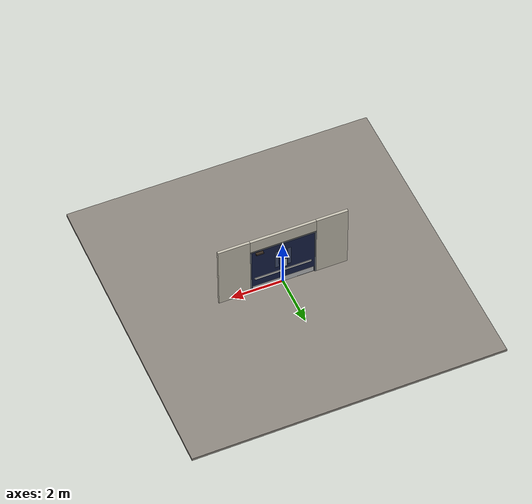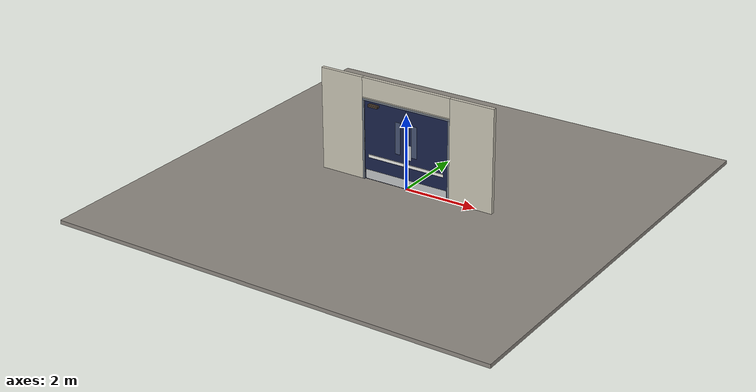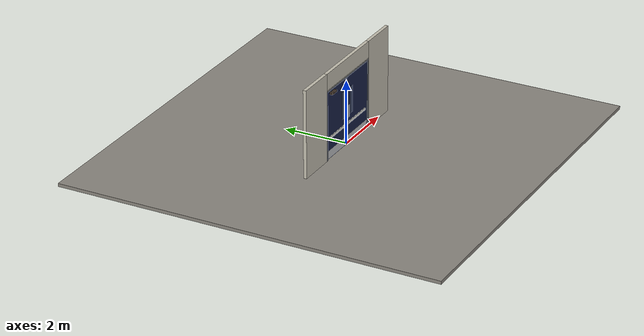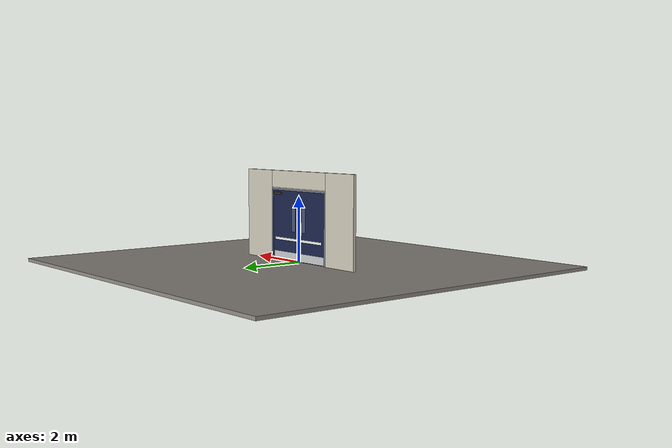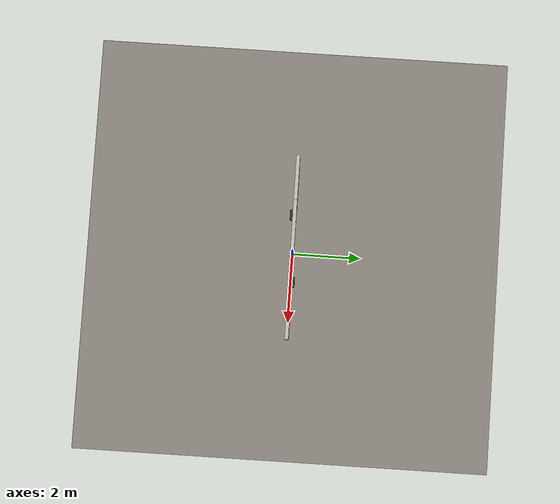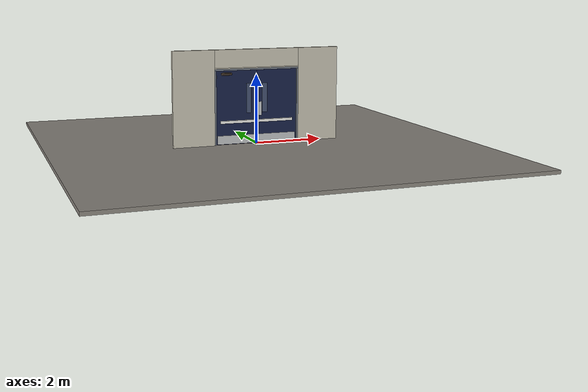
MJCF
<?xml version="1.0" ?>
<mujoco model="db0047_swing_double_full">
  <compiler angle="radian" meshdir="../../hardware" texturedir="../../textures" autolimits="true" inertiafromgeom="false"/>
  <option timestep="0.002" integrator="implicitfast" cone="elliptic" impratio="10" noslip_iterations="3">
    <flag multiccd="enable"/>
  </option>
  <size memory="16M"/>
  <default>
    <geom condim="4" solref="0.005 1" solimp="0.95 0.99 0.001"/>
    <joint solreflimit="0.005 1" solimplimit="0.95 0.99 0.001"/>
    <tendon solreflimit="0.005 1"/>
    <equality solref="0.002 1"/>
  </default>
  <visual>
    <headlight ambient="0.4 0.4 0.4" diffuse="0.7 0.7 0.7" specular="0.2 0.2 0.2"/>
    <quality shadowsize="4096"/>
    <map znear="0.01" zfar="60"/>
  </visual>
  <asset>
    <mesh name="closer_body_fdc4667657" file="closer_body_fdc4667657.obj"/>
    <mesh name="hinge_1cb808d647" file="hinge_1cb808d647.obj"/>
    <mesh name="hinge_jamb_7842e12854" file="hinge_jamb_7842e12854.obj"/>
    <material name="mat_floor" rgba="0.55 0.53 0.5 1" specular="0.2" shininess="0.15" reflectance="0"/>
    <material name="mat_wall" rgba="0.78 0.76 0.7 1" specular="0.2" shininess="0.1" reflectance="0"/>
    <material name="mat_leaf_a" rgba="0.09 0.13 0.28 1" specular="0.2" shininess="0.51" reflectance="0"/>
    <material name="mat_glass" rgba="0.85 0.92 0.95 0.25" specular="0.2" shininess="0.95" reflectance="0.1"/>
    <material name="mat_hinge" rgba="0.65 0.66 0.68 1" specular="0.74" shininess="0.5" reflectance="0.36"/>
    <material name="mat_op_stainless" rgba="0.75 0.76 0.77 1" specular="0.8" shininess="0.65" reflectance="0.4"/>
    <material name="mat_closer" rgba="0.22 0.17 0.13 1" specular="0.8" shininess="0.6" reflectance="0.4"/>
    <material name="mat_kick" rgba="0.75 0.76 0.77 1" specular="0.8" shininess="0.65" reflectance="0.4"/>
    <material name="mat_bumper" rgba="0.92 0.92 0.9 1" specular="0.2" shininess="0.6" reflectance="0"/>
    <material name="mat_leaf_b" rgba="0.09 0.13 0.28 1" specular="0.2" shininess="0.51" reflectance="0"/>
    <material name="mat_frame" rgba="0.45 0.48 0.52 1" specular="0.32" shininess="0.6" reflectance="0.08"/>
    <texture name="skybox" type="skybox" builtin="gradient" rgb1="0.6 0.7 0.85" rgb2="0.9 0.92 0.95" width="256" height="256"/>
  </asset>
  <worldbody>
    <light name="sun" pos="1.5 -2.5 4" dir="-0.3 0.5 -0.8" directional="true" diffuse="0.8 0.8 0.8" specular="0.3 0.3 0.3" castshadow="true"/>
    <light name="fill" pos="-1.5 2.5 3" dir="0.3 -0.5 -0.7" directional="true" diffuse="0.35 0.35 0.4" castshadow="false"/>
    <camera name="robot_view" pos="0 -2.919063 1.890837" xyaxes="1 0 0 0 0.26963 0.962964" fovy="52"/>
    <camera name="far_view" pos="0 2.919063 1.890837" xyaxes="-1 0 0 0 -0.26963 0.962964" fovy="52"/>
    <camera name="iso" pos="-2.218488 -2.452013 2.357888" xyaxes="0.741536 -0.670913 0 0.242917 0.268487 0.932151" fovy="46"/>
    <camera name="detail_handle" pos="0.2845 -0.8 1.296" xyaxes="0.97561 0.219512 0 -0.070934 0.315262 0.94635" fovy="38"/>
    <geom name="floor" type="box" size="6 6 0.05" pos="0 0 -0.05" material="mat_floor" group="0" contype="1" conaffinity="1" friction="0.8 0.005 0.0001" density="2400"/>
    <geom name="wall_left" type="box" size="0.61325 0.05 1.3735" pos="-1.88675 0 1.3735" material="mat_wall" group="0" contype="1" conaffinity="1" friction="0.6 0.005 0.0001" density="800"/>
    <geom name="wall_right" type="box" size="0.61325 0.05 1.3735" pos="1.88675 0 1.3735" material="mat_wall" group="0" contype="1" conaffinity="1" friction="0.6 0.005 0.0001" density="800"/>
    <geom name="wall_header" type="box" size="1.2735 0.05 0.26" pos="0 0 2.487" material="mat_wall" group="0" contype="1" conaffinity="1" friction="0.6 0.005 0.0001" density="800"/>
    <geom name="hinge_0_jamb" type="mesh" mesh="hinge_jamb_7842e12854" pos="-1.2205 -0.029 0.259" material="mat_hinge" group="1" contype="0" conaffinity="0" density="7850"/>
    <geom name="hinge_1_jamb" type="mesh" mesh="hinge_jamb_7842e12854" pos="-1.2205 -0.029 1.076" material="mat_hinge" group="1" contype="0" conaffinity="0" density="7850"/>
    <geom name="hinge_2_jamb" type="mesh" mesh="hinge_jamb_7842e12854" pos="-1.2205 -0.029 1.963" material="mat_hinge" group="1" contype="0" conaffinity="0" density="7850"/>
    <geom name="hinge_0_jamb_2" type="mesh" mesh="hinge_jamb_7842e12854" pos="1.2205 0.029 0.259" quat="0 0 0 1" material="mat_hinge" group="1" contype="0" conaffinity="0" density="7850"/>
    <geom name="hinge_1_jamb_2" type="mesh" mesh="hinge_jamb_7842e12854" pos="1.2205 0.029 1.076" quat="0 0 0 1" material="mat_hinge" group="1" contype="0" conaffinity="0" density="7850"/>
    <geom name="hinge_2_jamb_2" type="mesh" mesh="hinge_jamb_7842e12854" pos="1.2205 0.029 1.963" quat="0 0 0 1" material="mat_hinge" group="1" contype="0" conaffinity="0" density="7850"/>
    <geom name="jamb_l" type="box" size="0.025 0.05 1.0735" pos="-1.2485 0 1.0735" material="mat_frame" group="0" contype="1" conaffinity="1" friction="0.6 0.005 0.0001" density="300"/>
    <geom name="jamb_r" type="box" size="0.025 0.05 1.0735" pos="1.2485 0 1.0735" material="mat_frame" group="0" contype="1" conaffinity="1" friction="0.6 0.005 0.0001" density="300"/>
    <geom name="jamb_head" type="box" size="1.2735 0.05 0.025" pos="0 0 2.172" material="mat_frame" group="0" contype="1" conaffinity="1" friction="0.6 0.005 0.0001" density="300"/>
    <geom name="head_stud" type="box" size="1.2735 0.05 0.015" pos="0 0 2.212" material="mat_wall" group="0" contype="1" conaffinity="1" friction="0.6 0.005 0.0001" density="500"/>
    <site name="approach_point" pos="0 -1.5 0" quat="1 0 0 0" size="0.05" rgba="0.2 0.9 0.2 0.5" group="4"/>
    <site name="goal_point" pos="0 1.5 0" quat="1 0 0 0" size="0.05" rgba="0.2 0.9 0.2 0.5" group="4"/>
    <site name="door_plane_center" pos="0 0 1.0735" quat="1 0 0 0" size="0.02" rgba="0.2 0.9 0.2 0.5" group="4"/>
    <site name="approach_point_2" pos="0 -1.5 0" quat="1 0 0 0" size="0.05" rgba="0.2 0.9 0.2 0.5" group="4"/>
    <site name="goal_point_2" pos="0 1.5 0" quat="1 0 0 0" size="0.05" rgba="0.2 0.9 0.2 0.5" group="4"/>
    <site name="door_plane_center_2" pos="0 0 1.0735" quat="1 0 0 0" size="0.02" rgba="0.2 0.9 0.2 0.5" group="4"/>
    <site name="approach_point_3" pos="0 -1.5 0" quat="1 0 0 0" size="0.05" rgba="0.2 0.9 0.2 0.5" group="4"/>
    <site name="goal_point_3" pos="0 1.5 0" quat="1 0 0 0" size="0.05" rgba="0.2 0.9 0.2 0.5" group="4"/>
    <site name="door_plane_center_3" pos="0 0 1.0735" quat="1 0 0 0" size="0.02" rgba="0.2 0.9 0.2 0.5" group="4"/>
    <body name="leaf_a" pos="-1.2235 0 0">
      <inertial pos="0.570844 -0.009706 1.129429" mass="87.762029" quat="0.525965 0.526875 0.480684 -0.463364" diaginertia="10.173780127 42.483946341 52.532470281"/>
      <joint name="leaf_a_hinge" type="hinge" axis="0 0 -1" pos="0.003 -0.029 0" limited="true" range="0 1.570796" damping="12.850995" frictionloss="3.176884" stiffness="19.0031" springref="-2.141756" armature="0.02"/>
      <geom name="leaf_a_slab" type="box" size="0.6095 0.022 1.067" pos="0.6125 0 1.076" material="mat_leaf_a" group="0" contype="1" conaffinity="1" friction="0.35 0.005 0.0001" density="1"/>
      <geom name="leaf_a_glass_0" type="box" size="0.075 0.0228 0.4268" pos="0.98291 0 1.33208" material="mat_glass" group="1" contype="0" conaffinity="0" density="1"/>
      <geom name="hinge_0" type="mesh" mesh="hinge_1cb808d647" pos="0.003 -0.029 0.259" material="mat_hinge" group="1" contype="0" conaffinity="0" density="7850"/>
      <geom name="hinge_1" type="mesh" mesh="hinge_1cb808d647" pos="0.003 -0.029 1.076" material="mat_hinge" group="1" contype="0" conaffinity="0" density="7850"/>
      <geom name="hinge_2" type="mesh" mesh="hinge_1cb808d647" pos="0.003 -0.029 1.963" material="mat_hinge" group="1" contype="0" conaffinity="0" density="7850"/>
      <geom name="leaf_a_push_plate_p" type="box" size="0.05 0.0008 0.2" pos="1.117 0.0228 1.016" material="mat_op_stainless" group="1" contype="0" conaffinity="0" density="7900"/>
      <geom name="closer_body" type="mesh" mesh="closer_body_fdc4667657" pos="0.3 -0.022 2.054" quat="0.707107 0.707107 0 0" material="mat_closer" group="1" contype="0" conaffinity="0" density="2000"/>
      <geom name="closer_body_col" type="box" size="0.145 0.05 0.035" pos="0.3 -0.072 2.054" material="mat_closer" group="3" contype="1" conaffinity="1" rgba="0.8 0.3 0.3 0.25" friction="0.6 0.005 0.0001" density="2000"/>
      <geom name="kick_plate_n" type="box" size="0.5795 0.0008 0.125" pos="0.6125 -0.0228 0.144" material="mat_kick" group="2" contype="0" conaffinity="0" density="7900"/>
      <geom name="kick_plate_p" type="box" size="0.5795 0.0008 0.125" pos="0.6125 0.0228 0.144" material="mat_kick" group="2" contype="0" conaffinity="0" density="7900"/>
      <geom name="bumper_rail_n" type="box" size="0.5245 0.01 0.04" pos="0.6475 -0.032 0.659" material="mat_bumper" group="0" contype="1" conaffinity="1" friction="0.6 0.005 0.0001" density="1200"/>
      <geom name="bumper_rail_p" type="box" size="0.5245 0.01 0.04" pos="0.6475 0.032 0.659" material="mat_bumper" group="0" contype="1" conaffinity="1" friction="0.6 0.005 0.0001" density="1200"/>
      <site name="leaf_a_push_plate_push_p" pos="1.117 0.022 1.016" quat="1 0 0 0" size="0.012" rgba="0.2 0.9 0.2 0.5" group="4"/>
      <site name="leaf_a_edge_mid" pos="1.222 0 1.067" quat="1 0 0 0" size="0.02" rgba="0.2 0.9 0.2 0.5" group="4"/>
    </body>
    <body name="leaf_b" pos="1.2235 0 0">
      <inertial pos="-0.570844 0.009706 1.129429" mass="87.762029" quat="-0.480684 -0.463364 -0.525965 0.526875" diaginertia="10.173780127 42.483946341 52.532470281"/>
      <joint name="leaf_b_hinge" type="hinge" axis="0 0 -1" pos="-0.003 0.029 0" limited="true" range="0 1.570796" damping="12.850995" frictionloss="3.176884" stiffness="19.0031" springref="-2.141756" armature="0.02"/>
      <geom name="leaf_b_slab" type="box" size="0.6095 0.022 1.067" pos="-0.6125 0 1.076" material="mat_leaf_b" group="0" contype="1" conaffinity="1" friction="0.35 0.005 0.0001" density="1"/>
      <geom name="leaf_b_glass_0" type="box" size="0.075 0.0228 0.4268" pos="-0.98291 0 1.33208" material="mat_glass" group="1" contype="0" conaffinity="0" density="1"/>
      <geom name="hinge_0_2" type="mesh" mesh="hinge_1cb808d647" pos="-0.003 0.029 0.259" quat="0 0 0 1" material="mat_hinge" group="1" contype="0" conaffinity="0" density="7850"/>
      <geom name="hinge_1_2" type="mesh" mesh="hinge_1cb808d647" pos="-0.003 0.029 1.076" quat="0 0 0 1" material="mat_hinge" group="1" contype="0" conaffinity="0" density="7850"/>
      <geom name="hinge_2_2" type="mesh" mesh="hinge_1cb808d647" pos="-0.003 0.029 1.963" quat="0 0 0 1" material="mat_hinge" group="1" contype="0" conaffinity="0" density="7850"/>
      <geom name="leaf_b_push_plate_n" type="box" size="0.05 0.0008 0.2" pos="-1.117 -0.0228 1.016" material="mat_op_stainless" group="1" contype="0" conaffinity="0" density="7900"/>
      <geom name="closer_body_2" type="mesh" mesh="closer_body_fdc4667657" pos="-0.3 0.022 2.054" quat="0 0 0.707107 0.707107" material="mat_closer" group="1" contype="0" conaffinity="0" density="2000"/>
      <geom name="closer_body_col_2" type="box" size="0.145 0.05 0.035" pos="-0.3 0.072 2.054" material="mat_closer" group="3" contype="1" conaffinity="1" rgba="0.8 0.3 0.3 0.25" friction="0.6 0.005 0.0001" density="2000"/>
      <geom name="kick_plate_n_2" type="box" size="0.5795 0.0008 0.125" pos="-0.6125 -0.0228 0.144" material="mat_kick" group="2" contype="0" conaffinity="0" density="7900"/>
      <geom name="kick_plate_p_2" type="box" size="0.5795 0.0008 0.125" pos="-0.6125 0.0228 0.144" material="mat_kick" group="2" contype="0" conaffinity="0" density="7900"/>
      <geom name="bumper_rail_n_2" type="box" size="0.5245 0.01 0.04" pos="-0.6475 -0.032 0.659" material="mat_bumper" group="0" contype="1" conaffinity="1" friction="0.6 0.005 0.0001" density="1200"/>
      <geom name="bumper_rail_p_2" type="box" size="0.5245 0.01 0.04" pos="-0.6475 0.032 0.659" material="mat_bumper" group="0" contype="1" conaffinity="1" friction="0.6 0.005 0.0001" density="1200"/>
      <site name="leaf_b_push_plate_push_n" pos="-1.117 -0.022 1.016" quat="1 0 0 0" size="0.012" rgba="0.2 0.9 0.2 0.5" group="4"/>
      <site name="leaf_b_edge_mid" pos="-1.222 0 1.067" quat="1 0 0 0" size="0.02" rgba="0.2 0.9 0.2 0.5" group="4"/>
    </body>
  </worldbody>
  <sensor>
    <jointpos name="leaf_a_hinge_pos" joint="leaf_a_hinge"/>
    <jointvel name="leaf_a_hinge_vel" joint="leaf_a_hinge"/>
    <jointpos name="leaf_b_hinge_pos" joint="leaf_b_hinge"/>
    <jointvel name="leaf_b_hinge_vel" joint="leaf_b_hinge"/>
  </sensor>
</mujoco>
